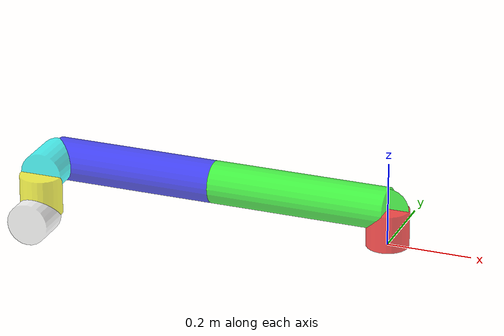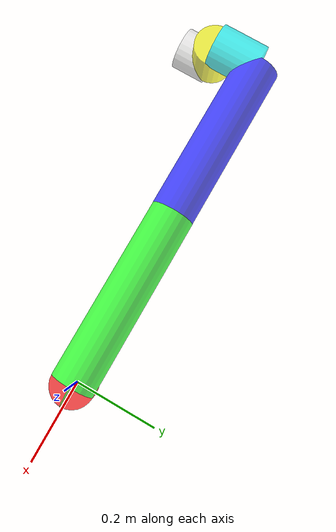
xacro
<?xml version="1.0"?>
<robot xmlns:xacro="http://www.ros.org/wiki/xacro" name="UR5">
    <xacro:macro name="DH_link"
        params="link_no a alpha d link_dia colour_r colour_g colour_b colour_a parent_link_name mass limit_min limit_max vel_max effort_max">

        <material name="mat_${link_no}">
            <color rgba="${colour_r} ${colour_g} ${colour_b} ${colour_a}" />
        </material>

        <link name="Link_${link_no}">
            <visual>
                <geometry>
                    <cylinder length="${d}" radius="${link_dia}" />
                </geometry>
                <origin xyz="0  0 ${d*0.5}" rpy="0 0 0" />
                <material name="mat_${link_no}" />
            </visual>
            <xacro:unless value="${a==0}">
                <visual>
                    <geometry>
                        <cylinder length="${a}" radius="${link_dia}" />
                    </geometry>
                    <origin xyz="${a*0.5}  0 ${d}" rpy="0 1.57 0" />
                    <material name="mat_${link_no}" />
                </visual>
            </xacro:unless>

            <collision>
                <geometry>
                    <cylinder length="${d}" radius="${link_dia}" />
                </geometry>
                <origin xyz="0  0 ${d*0.5}" rpy="0 0 0" />
            </collision>

            <xacro:unless value="${a==0}">
                <collision>
                    <geometry>
                        <cylinder length="${a}" radius="${link_dia}" />
                    </geometry>
                    <origin xyz="${a*0.5}  0 ${d}" rpy="0 1.57 0" />
                    <material name="mat_${link_no}" />
                </collision>
            </xacro:unless>

            <inertial>
                <mass value="${mass}" />
                <inertia ixx="0.4" ixy="0.0" ixz="0.0" iyy="0.4" iyz="0.0" izz="0.2" />
            </inertial>
        </link>

        <joint name="Joint_${link_no}" type="revolute">
            <parent link="${parent_link_name}" />
            <child link="Link_${link_no}" />
            <origin xyz="0 0.0 0" />
            <axis xyz="0 0 1" />
            <dynamics damping="0.0" friction="0.0" />
            <limit effort="${effort_max}" lower="${limit_min}" upper="${limit_max}"
                velocity="${vel_max}" />
        </joint>

        <link name="Link_${link_no}_child_frame">
        </link>

        <joint name="${link_no}_child_frame_joint" type="fixed">
            <origin xyz="${a}  0 ${d}" rpy="${alpha} 0 0" />
            <parent link="Link_${link_no}" />
            <child link="Link_${link_no}_child_frame" />
        </joint>

    </xacro:macro>

    <!-- Robot arm defination starts from here-->
    <!-- DH parameters are taken from this
    https://www.universal-robots.com/articles/ur/application-installation/dh-parameters-for-calculations-of-kinematics-and-dynamics/-->

    <link name="world" />

    <xacro:DH_link link_no="0" a="0" alpha="1.57" d="0.089159" link_dia=".05" colour_r="1"
        colour_g="0"
        colour_b="0" colour_a="0.7" parent_link_name="world" mass="1" limit_min="1.57"
        limit_max="-1.57" vel_max="10" effort_max="10" />

    <xacro:DH_link link_no="1" a="-0.425" alpha="0" d="0" link_dia=".05" colour_r="0" colour_g="1"
        colour_b="0" colour_a="0.7" parent_link_name="Link_0_child_frame" mass="1" limit_min="1.57"
        limit_max="-1.57" vel_max="10" effort_max="10" />

    <xacro:DH_link link_no="2" a="-0.39225" alpha="0" d="0" link_dia=".05" colour_r="0" colour_g="0"
        colour_b="1" colour_a="0.7" parent_link_name="Link_1_child_frame" mass="1" limit_min="1.57"
        limit_max="-1.57" vel_max="10" effort_max="10" />

    <xacro:DH_link link_no="3" a="0" alpha="1.57" d="0.10915" link_dia=".05" colour_r="0"
        colour_g="1"
        colour_b="1" colour_a="0.7" parent_link_name="Link_2_child_frame" mass="1" limit_min="1.57"
        limit_max="-1.57" vel_max="10" effort_max="10" />

    <xacro:DH_link link_no="4" a="0" alpha="-1.57" d="0.09465" link_dia=".05" colour_r="1"
        colour_g="1"
        colour_b="0" colour_a="0.7" parent_link_name="Link_3_child_frame" mass="1" limit_min="1.57"
        limit_max="-1.57" vel_max="10" effort_max="10" />

    <xacro:DH_link link_no="5" a="0" alpha="0" d="0.0823" link_dia=".05" colour_r="1" colour_g="1"
        colour_b="1" colour_a="0.7" parent_link_name="Link_4_child_frame" mass="1" limit_min="1.57"
        limit_max="-1.57" vel_max="10" effort_max="10" />

</robot>
